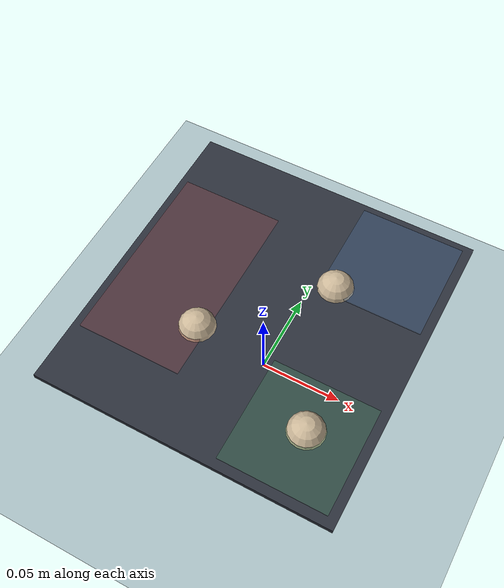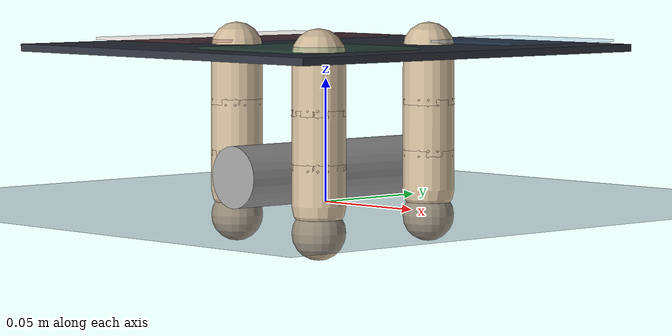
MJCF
<mujoco model="scene_tp0d0239n0d0251p0d0000_in0d0222n0d0238p0d0000_mp0d0017p0d0037p0d0000">
  <compiler angle="radian" autolimits="true" />
  <option timestep="0.002" gravity="0 0 -9.81" integrator="implicitfast" />
  <visual>
    <headlight ambient=".4 .4 .4" diffuse=".8 .8 .8" specular="0.1 0.1 0.1" />
    <map znear=".01" />
    <quality shadowsize="2048" />
    <global elevation="-15" />
  </visual>
  <default>
    <geom friction="1.8 0.15 0.01" solref="0.006 1" solimp="0.97 0.995 0.0005" />
    <motor ctrlrange="-1 1" ctrllimited="true" />
    <default class="pose">
      <joint damping="2.0" armature="0.01" />
      <position kp="4000" kv="100" forcerange="-1000 1000" />
    </default>
    <default class="ctrl">
      <joint type="hinge" damping="0.5" armature="0.001" />
      <position kp="30" kv="0.5" gear="1" forcerange="-10 10" ctrlrange="-1 1" />
    </default>
  </default>
  <asset>
    <texture type="skybox" builtin="gradient" rgb1="0.3 0.5 0.7" rgb2="0 0 0" width="512" height="3072" />
    <texture type="2d" name="groundplane" builtin="checker" mark="edge" rgb1="0.2 0.3 0.4" rgb2="0.1 0.2 0.3" markrgb="0.8 0.8 0.8" width="300" height="300" />
    <material name="groundplane" texture="groundplane" texuniform="true" texrepeat="5 5" reflectance="0.2" />
    <texture name="grid" type="2d" builtin="checker" rgb1="0.15 0.15 0.15" rgb2="0.25 0.25 0.25" width="256" height="256" />
    <material name="table_mat" texture="grid" texrepeat="3 3" reflectance="0.2" />
    <material name="palm_mat" rgba="0.18 0.2 0.24 1" />
    <material name="finger_mat" rgba="0.8 0.72 0.6 1" />
    <material name="object_mat" rgba="0.6 0.6 0.6 1" />
  </asset>
  <worldbody>
    <light pos="0 0 1.5" dir="0 0 -1" directional="true" diffuse=".6 .6 .6" specular=".2 .2 .2" />
    <light pos="0.5 0.5 1.0" dir="-1 -1 -1" directional="true" diffuse=".4 .4 .4" specular=".1 .1 .1" />
    <geom name="floor" type="plane" size="1.5 1.5 0.1" material="groundplane" />
    <body name="screwdriver_medium" pos="0.0 0.0 0.0125" quat="0.70711 0.70711 0 0">
      <freejoint />
      <geom type="cylinder" size="0.0125 0.05" density="500" material="object_mat" friction="2.4 0.2 0.02" />
    </body>
    <body gravcomp="1" name="palm_pose" pos="0 0 0.062500">
      <joint class="pose" name="palm_px" type="slide" axis="1 0 0" range="-0.20 0.20" />
      <joint class="pose" name="palm_py" type="slide" axis="0 1 0" range="-0.20 0.20" />
      <joint class="pose" name="palm_pz" type="slide" axis="0 0 1" range="-0.15 0.35" />
      <joint class="pose" name="palm_rx" type="hinge" axis="1 0 0" range="-1.57 1.57" />
      <joint class="pose" name="palm_ry" type="hinge" axis="0 1 0" range="-1.57 1.57" />
      <joint class="pose" name="palm_rz" type="hinge" axis="0 0 1" range="-3.14 3.14" />
      <geom type="box" size="0.0850 0.0900 0.0015" material="palm_mat" />
      <site name="workspace_thumb" type="box" pos="-0.050 0 0.003" size="0.030 0.055 0.0005" rgba="0.85 0.30 0.30 0.14" />
      <site name="workspace_index" type="box" pos="0.050 0.055 0.003" size="0.030 0.030 0.0005" rgba="0.30 0.55 0.85 0.14" />
      <site name="workspace_middle" type="box" pos="0.050 -0.055 0.003" size="0.030 0.030 0.0005" rgba="0.30 0.75 0.45 0.14" />
      <body name="thumb_mount" pos="-0.026067 -0.025077 0">
        <inertial pos="0 0 0" mass="0.001" diaginertia="1e-6 1e-6 1e-6" />
        <body name="thumb_yaw_frame">
          <joint class="ctrl" name="thumb_yaw" axis="1 0 0" range="-1.483530 1.483530" />
          <geom type="capsule" fromto="0 0 0 0 0 -0.022900" size="0.010550" material="finger_mat" />
          <body name="thumb_mcp_frame" pos="0 0 -0.020750">
            <joint class="ctrl" name="thumb_mcp" axis="0 -1 0" range="-0.261799 1.605703" />
            <geom type="capsule" fromto="0 0 0 0 0 -0.022900" size="0.010550" material="finger_mat" />
            <body name="thumb_len_frame" pos="0 0 0">
              <inertial pos="0 0 0" mass="0.001" diaginertia="1e-6 1e-6 1e-6" />
              <body name="thumb_pip_frame" pos="0 0 -0.020750">
                <joint class="ctrl" name="thumb_pip" axis="0 -1 0" range="-0.314159 1.605703" />
                <geom type="capsule" fromto="0 0 0 0 0 -0.016060" size="0.010550" material="finger_mat" friction="2.4 0.2 0.02" />
                <body name="thumb_tip" pos="0 0 -0.026610">
                  <geom type="sphere" size="0.010550" material="finger_mat" friction="2.4 0.2 0.02" />
                </body>
              </body>
            </body>
          </body>
        </body>
      </body>
      <body name="index_mount" pos="0.027824 0.031215 0">
        <inertial pos="0 0 0" mass="0.001" diaginertia="1e-6 1e-6 1e-6" />
        <body name="index_yaw_frame">
          <joint class="ctrl" name="index_yaw" axis="1 0 0" range="-1.483530 1.483530" />
          <geom type="capsule" fromto="0 0 0 0 0 -0.022900" size="0.010550" material="finger_mat" />
          <body name="index_mcp_frame" pos="0 0 -0.020750">
            <joint class="ctrl" name="index_mcp" axis="0 1 0" range="-0.261799 1.605703" />
            <geom type="capsule" fromto="0 0 0 0 0 -0.022900" size="0.010550" material="finger_mat" />
            <body name="index_len_frame" pos="0 0 0">
              <inertial pos="0 0 0" mass="0.001" diaginertia="1e-6 1e-6 1e-6" />
              <body name="index_pip_frame" pos="0 0 -0.020750">
                <joint class="ctrl" name="index_pip" axis="0 1 0" range="-0.314159 1.605703" />
                <geom type="capsule" fromto="0 0 0 0 0 -0.016060" size="0.010550" material="finger_mat" friction="2.4 0.2 0.02" />
                <body name="index_tip" pos="0 0 -0.026610">
                  <geom type="sphere" size="0.010550" material="finger_mat" friction="2.4 0.2 0.02" />
                </body>
              </body>
            </body>
          </body>
        </body>
      </body>
      <body name="middle_mount" pos="0.051659 -0.051269 0">
        <inertial pos="0 0 0" mass="0.001" diaginertia="1e-6 1e-6 1e-6" />
        <body name="middle_yaw_frame">
          <joint class="ctrl" name="middle_yaw" axis="1 0 0" range="-1.483530 1.483530" />
          <geom type="capsule" fromto="0 0 0 0 0 -0.022900" size="0.010550" material="finger_mat" />
          <body name="middle_mcp_frame" pos="0 0 -0.020750">
            <joint class="ctrl" name="middle_mcp" axis="0 1 0" range="-0.261799 1.605703" />
            <geom type="capsule" fromto="0 0 0 0 0 -0.022900" size="0.010550" material="finger_mat" />
            <body name="middle_len_frame" pos="0 0 0">
              <inertial pos="0 0 0" mass="0.001" diaginertia="1e-6 1e-6 1e-6" />
              <body name="middle_pip_frame" pos="0 0 -0.020750">
                <joint class="ctrl" name="middle_pip" axis="0 1 0" range="-0.314159 1.605703" />
                <geom type="capsule" fromto="0 0 0 0 0 -0.016060" size="0.010550" material="finger_mat" friction="2.4 0.2 0.02" />
                <body name="middle_tip" pos="0 0 -0.026610">
                  <geom type="sphere" size="0.010550" material="finger_mat" friction="2.4 0.2 0.02" />
                </body>
              </body>
            </body>
          </body>
        </body>
      </body>
    </body>
  </worldbody>
  <contact>
    <exclude body1="palm_pose" body2="thumb_yaw_frame" />
    <exclude body1="palm_pose" body2="thumb_mcp_frame" />
    <exclude body1="palm_pose" body2="thumb_len_frame" />
    <exclude body1="palm_pose" body2="thumb_pip_frame" />
    <exclude body1="palm_pose" body2="thumb_tip" />
    <exclude body1="thumb_yaw_frame" body2="thumb_pip_frame" />
    <exclude body1="thumb_mcp_frame" body2="thumb_pip_frame" />
    <exclude body1="palm_pose" body2="index_yaw_frame" />
    <exclude body1="palm_pose" body2="index_mcp_frame" />
    <exclude body1="palm_pose" body2="index_len_frame" />
    <exclude body1="palm_pose" body2="index_pip_frame" />
    <exclude body1="palm_pose" body2="index_tip" />
    <exclude body1="index_yaw_frame" body2="index_pip_frame" />
    <exclude body1="index_mcp_frame" body2="index_pip_frame" />
    <exclude body1="palm_pose" body2="middle_yaw_frame" />
    <exclude body1="palm_pose" body2="middle_mcp_frame" />
    <exclude body1="palm_pose" body2="middle_len_frame" />
    <exclude body1="palm_pose" body2="middle_pip_frame" />
    <exclude body1="palm_pose" body2="middle_tip" />
    <exclude body1="middle_yaw_frame" body2="middle_pip_frame" />
    <exclude body1="middle_mcp_frame" body2="middle_pip_frame" />
  </contact>
  <actuator>
    <position class="pose" name="a_palm_px" joint="palm_px" ctrlrange="-0.20 0.20" />
    <position class="pose" name="a_palm_py" joint="palm_py" ctrlrange="-0.20 0.20" />
    <position class="pose" name="a_palm_pz" joint="palm_pz" ctrlrange="-0.15 0.35" />
    <position class="pose" name="a_palm_rx" joint="palm_rx" ctrlrange="-1.57 1.57" />
    <position class="pose" name="a_palm_ry" joint="palm_ry" ctrlrange="-1.57 1.57" />
    <position class="pose" name="a_palm_rz" joint="palm_rz" ctrlrange="-3.14 3.14" />
    <position class="ctrl" name="a_thumb_yaw" joint="thumb_yaw" ctrlrange="-1.483530 1.483530" />
    <position class="ctrl" name="a_thumb_mcp" joint="thumb_mcp" ctrlrange="-0.261799 1.605703" />
    <position class="ctrl" name="a_thumb_pip" joint="thumb_pip" ctrlrange="-0.314159 1.605703" />
    <position class="ctrl" name="a_index_yaw" joint="index_yaw" ctrlrange="-1.483530 1.483530" />
    <position class="ctrl" name="a_index_mcp" joint="index_mcp" ctrlrange="-0.261799 1.605703" />
    <position class="ctrl" name="a_index_pip" joint="index_pip" ctrlrange="-0.314159 1.605703" />
    <position class="ctrl" name="a_middle_yaw" joint="middle_yaw" ctrlrange="-1.483530 1.483530" />
    <position class="ctrl" name="a_middle_mcp" joint="middle_mcp" ctrlrange="-0.261799 1.605703" />
    <position class="ctrl" name="a_middle_pip" joint="middle_pip" ctrlrange="-0.314159 1.605703" />
  </actuator>
  <keyframe>
    <key name="open_ik" qpos="&#10;        0 0 0.0125 0.707107 0.707107 0 0 0 0 0.01 0 0 0 0 0.208613 0.770296 -0.421055 0.523357 0.0953978 0.421055 0.523357 0.0953978&#10;      " ctrl="0 0 0.01 0 0 0 0 0.208613 0.770296 -0.421055 0.523357 0.0953978 0.421055 0.523357 0.0953978" />
    <key name="open" qpos="&#10;        0 0 0.0125 0.707107 0.707107 0 0 0 0 0.01 0 0 0 0 -0.167745 1.20758 -0.429327 0.0237063 0.770516 0.429327 0.0237063 0.770516&#10;      " ctrl="&#10;        0 0 0.01 0 0 0 0 -0.167745 1.20758 -0.429327 0.0237063 0.770516 0.429327 0.0237063 0.770516&#10;      " />
  </keyframe>
</mujoco>
